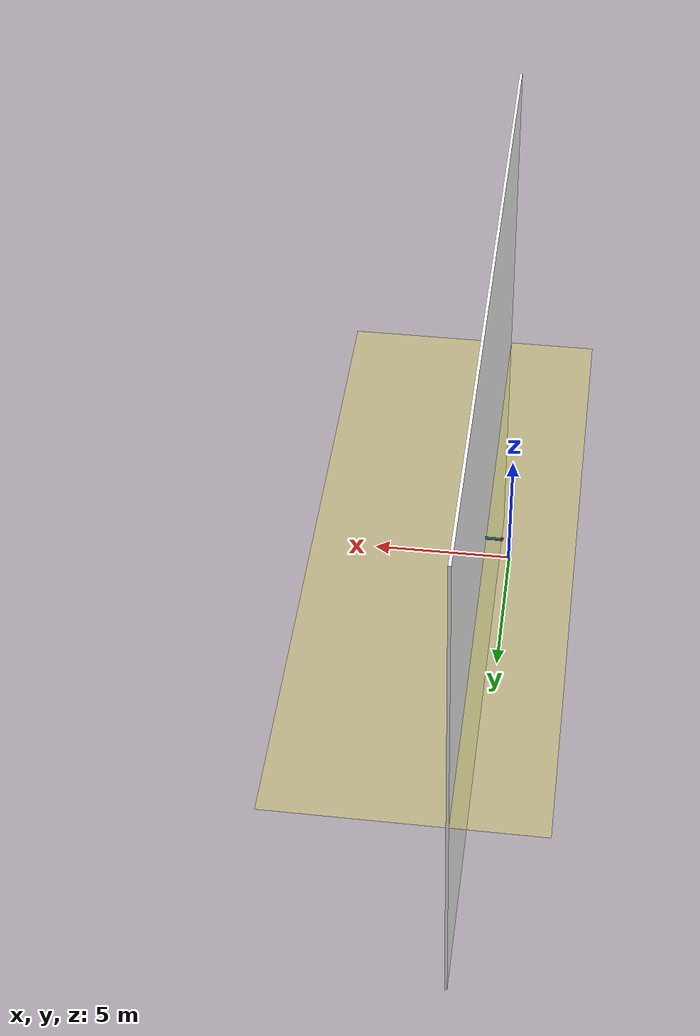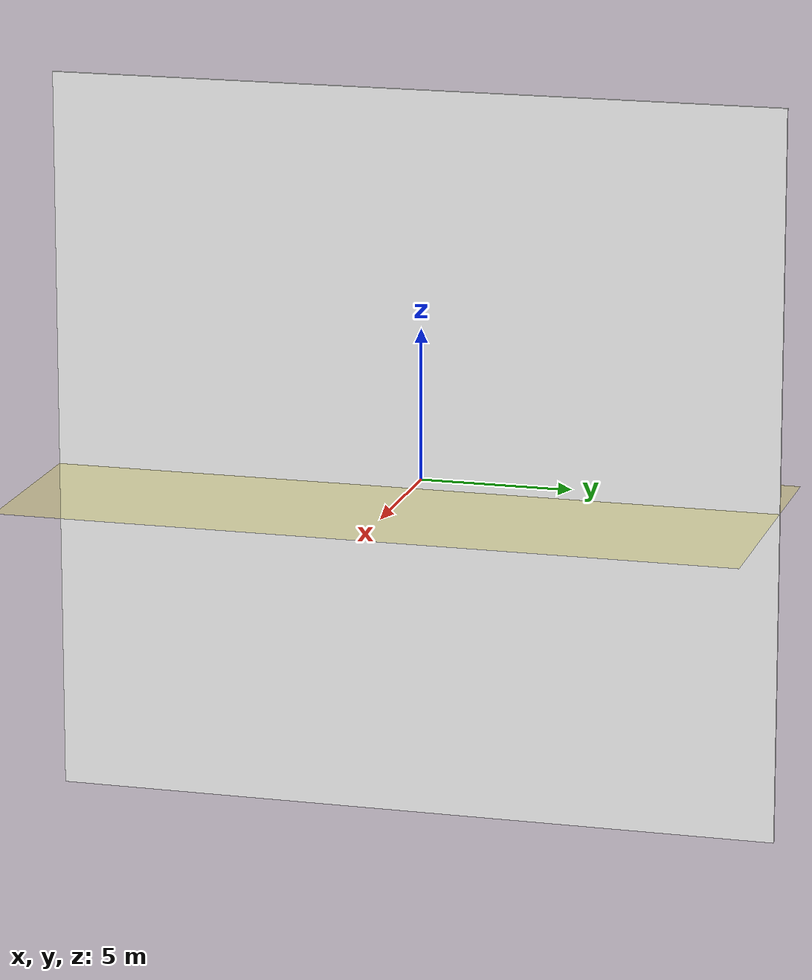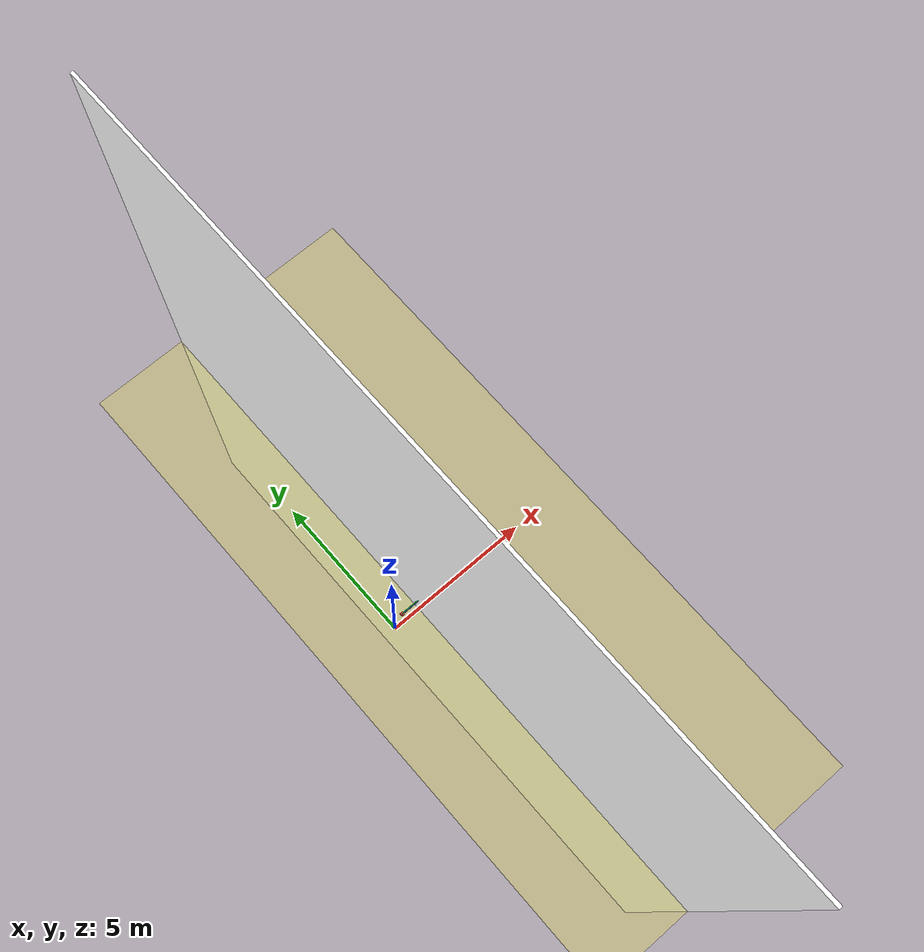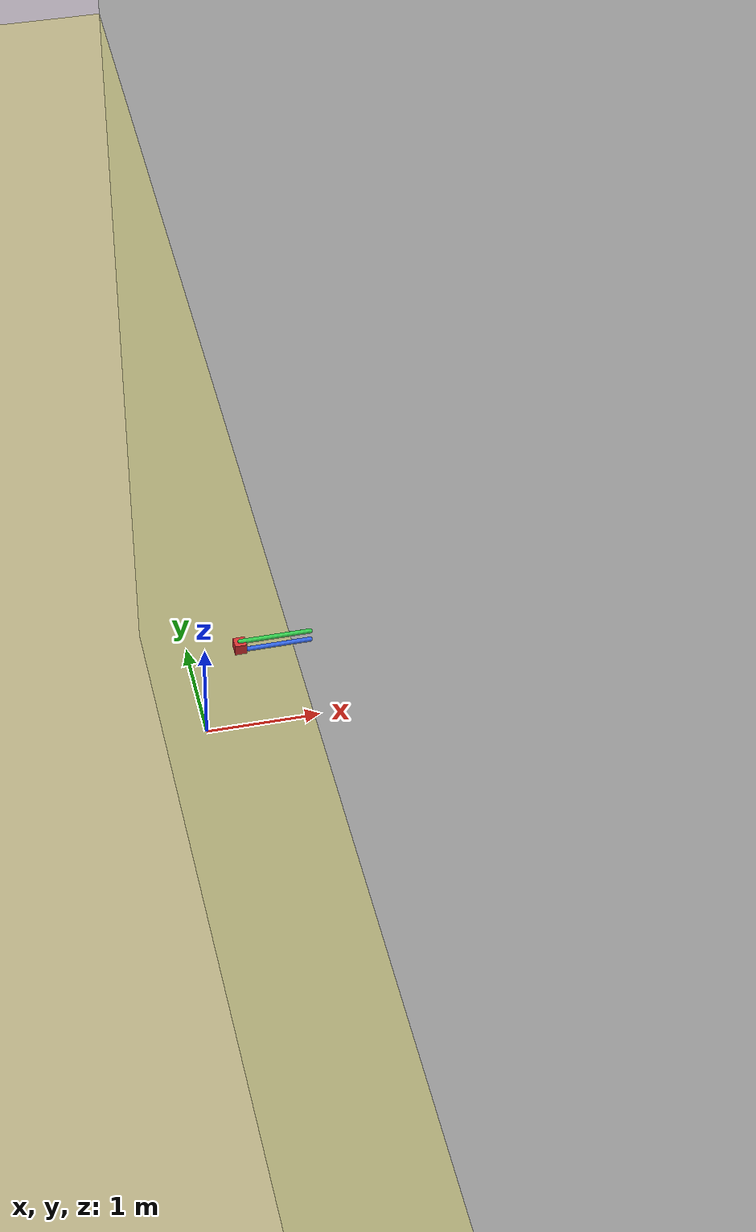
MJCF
<mujoco>
  <option timestep="0.005" gravity="0 0 -9.81"/>
  <worldbody>
    <geom type="plane" size="12 12 0.1" rgba="0.9 0.85 0.2 1"/>
    <geom type="box" size="0.05 12 12" pos="1 0 1"
          rgba="1 1 1 1" friction="0.5 0.01 0.001"/>

    <body name="torso" pos="0.30035995614644284 0 1">
      <joint type="slide" axis="1 0 0" damping="5"/>
      <joint type="slide" axis="0 0 1" damping="5"/>
      <geom type="box" size="0.05 0.05 0.05" rgba="0.85 0.2 0.2 1"/>

      <body name="left_leg" pos="0 0 -0.05">
        <joint name="hip_L" type="hinge" axis="0 1 0"
               range="-44.276321225503395 44.276321225503395" damping="20"/>
        <geom type="capsule" fromto="0 0 0 0.5996400438535572 0 0"
              size="0.02" rgba="0.2 0.4 0.9 1"/>
        <site name="left_tip" pos="0.5996400438535572 0 0" size="0.01"/>
      </body>

      <body name="right_leg" pos="0 0 0.05">
        <joint name="hip_R" type="hinge" axis="0 1 0"
               range="-44.276321225503395 44.276321225503395" damping="20"/>
        <geom type="capsule" fromto="0 0 0 0.5996400438535572 0 0"
              size="0.02" rgba="0.2 0.8 0.3 1"/>
        <site name="right_tip" pos="0.5996400438535572 0 0" size="0.01"/>
      </body>
    </body>
  </worldbody>

  <actuator>
    <motor joint="hip_L" gear="101.84650116974542" ctrlrange="-1 1"/>
    <motor joint="hip_R" gear="101.84650116974542" ctrlrange="-1 1"/>
  </actuator>
</mujoco>
